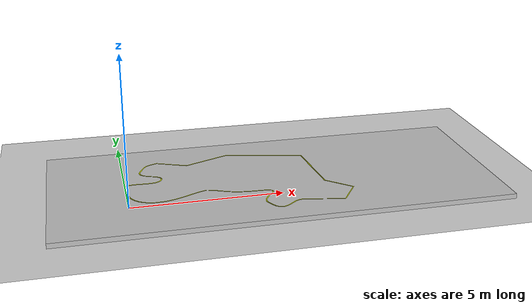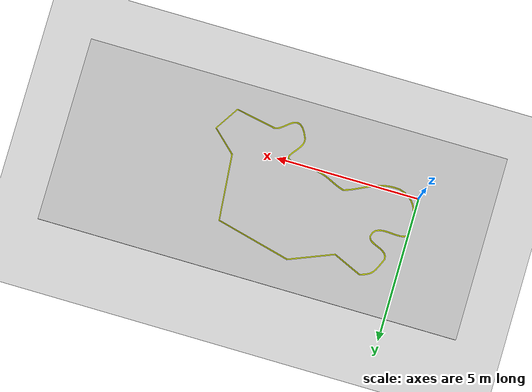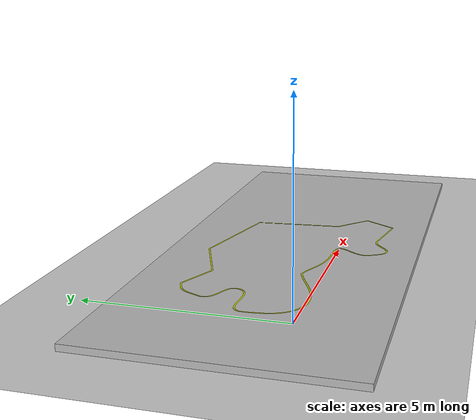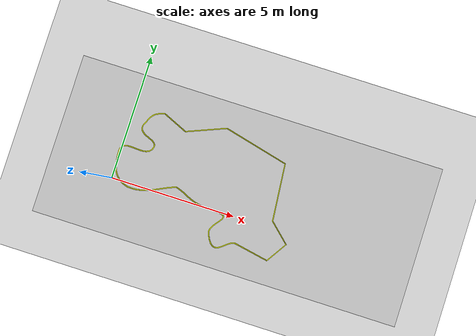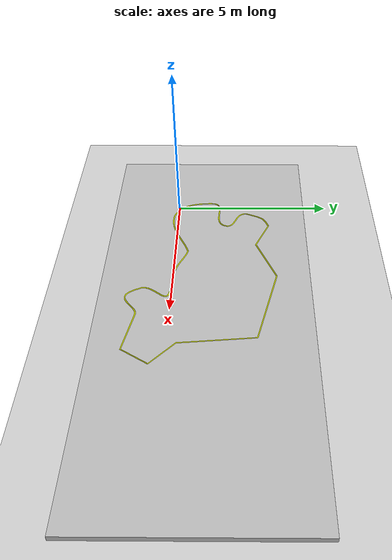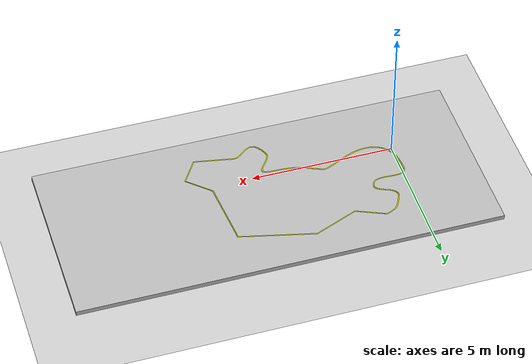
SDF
<?xml version="1.0" ?>
<sdf version="1.4">
	<world name="default">
    		<!-- Simple world  model -->
		<include>
			<uri>model://test</uri>
			<name>test</name>
			<pose>0 0 0 0 0 0</pose>
		</include>

		<include>
			<uri>model://sun</uri>
		</include>

		<!-- A ground plane -->
		<include>
			<uri>model://ground_plane</uri>
		</include>

		<scene>
			<grid>false</grid>
		</scene>
	</world>
</sdf>

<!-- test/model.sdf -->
<sdf version='1.4'>

  <model name='escenario'>
    <pose>0 0 0 0 0 0</pose>
    <static>true</static>
    <link name="test">
      <visual name="test">
        <geometry>
          <mesh><uri>model://test/meshes/test.dae</uri></mesh>
        </geometry>
      </visual>
    </link>
    <link name="plano">
      <visual name="plano">
        <geometry>
          <mesh><uri>model://test/meshes/plano.dae</uri></mesh>
        </geometry>
      </visual>
      <collision name="plano_collision">
        <geometry>
          <mesh><uri>model://test/meshes/plano.dae</uri></mesh>
        </geometry>
      </collision>
    </link>
  </model>
</sdf>
